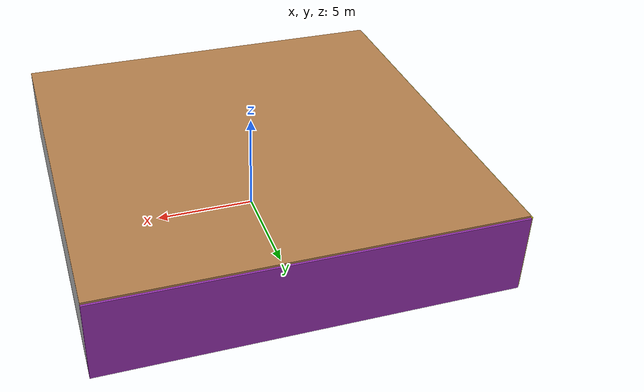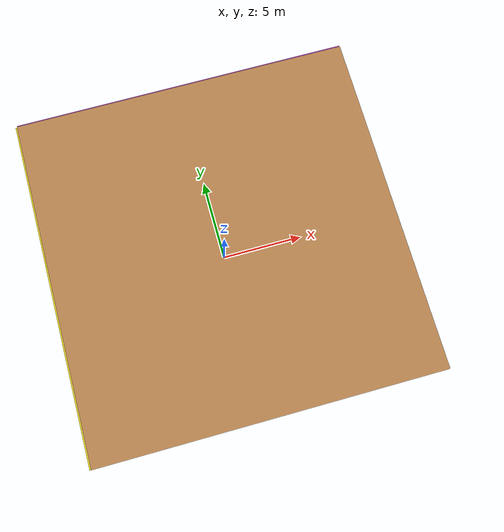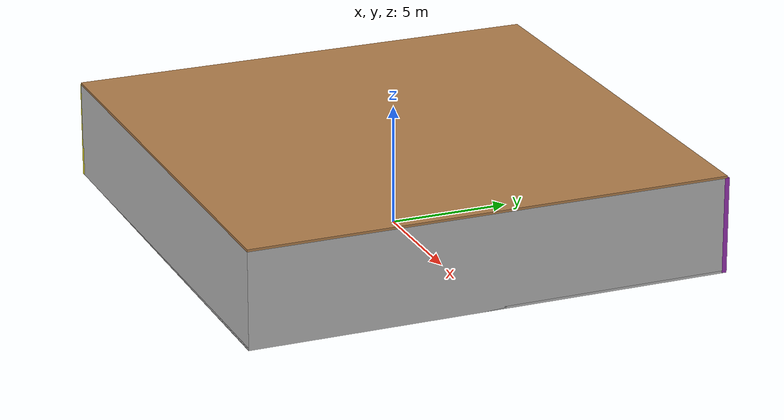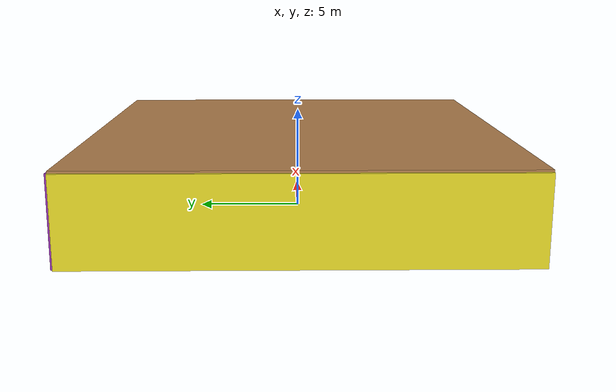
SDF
<sdf version="1.4">
 <world name="default">
  <physics type="ode">
   <max_step_size>0.001</max_step_size>
   <real_time_factor>1</real_time_factor>
   <real_time_update_rate>1000</real_time_update_rate>
   <gravity>0 0 -9.8</gravity>
  </physics>
  <scene><ambient>0.4 0.4 0.4 1</ambient><background>0.7 0.7 0.7 1</background><shadows>1</shadows></scene>
  <model name="Surrounding">
   <static>1</static>
   <link name="Ceiling">
    <collision name="Ceiling_Collision"><geometry><box><size>20 20 0.1</size></box></geometry></collision>
    <visual name="Ceiling_Visual">
     <geometry><box><size>20 20 0.1</size></box></geometry>
     <material>
      <script><uri>file://media/materials/scripts/gazebo.material</uri><name>Gazebo/Wood</name></script>
     </material>
    </visual>
    <pose>0 0 4.05 0 0 0</pose>
   </link>
   <link name="Wall_South">
    <collision name="Wall_South_Collision">
     <geometry><box><size>20 0 4</size></box></geometry>
     <pose>0 0 2 0 -0 0</pose>
    </collision>
    <visual name="Wall_South_Visual">
     <pose>0 0 2 0 -0 0</pose>
     <geometry><box><size>20 0 4</size></box></geometry>
     <material>
      <script><uri>file://media/materials/scripts/gazebo.material</uri><name>Gazebo/LightOn</name></script>
     </material>
    </visual>
    <velocity_decay><linear>0</linear><angular>0</angular></velocity_decay>
    <pose>0 -10 0 0 -0 0</pose>
   </link>
   <link name="Wall_East">
    <collision name="Wall_21_Collision">
     <geometry><box><size>20 0 4</size></box></geometry>
     <pose>0 0 2 0 -0 0</pose>
    </collision>
    <visual name="Wall_21_Visual">
     <pose>0 0 2 0 -0 0</pose>
     <geometry><box><size>20 0 4</size></box></geometry>
     <material>
      <script><uri>file://media/materials/scripts/gazebo.material</uri><name>Gazebo/LightOn</name></script>
     </material>
    </visual>
    <velocity_decay><linear>0</linear><angular>0</angular></velocity_decay>
    <pose>10 0 0 0 -0 1.5708</pose>
   </link>
   <link name="Wall_North">
    <collision name="Wall_22_Collision">
     <geometry><box><size>20 0.2 4</size></box></geometry>
     <pose>0 0 2 0 -0 0</pose>
    </collision>
    <visual name="Wall_22_Visual">
     <pose>0 0 2 0 -0 0</pose>
     <geometry><box><size>20 0.2 4</size></box></geometry>
     <material>
      <script><uri>file://media/materials/scripts/gazebo.material</uri><name>Gazebo/Purple</name></script>
     </material>
    </visual>
    <velocity_decay><linear>0</linear><angular>0</angular></velocity_decay>
    <pose>0 10 0 0 -0 0</pose>
   </link>
   <link name="Wall_West">
    <collision name="Wall_23_Collision">
     <geometry><box><size>20 0.2 4</size></box></geometry>
     <pose>0 0 2 0 -0 0</pose>
    </collision>
    <visual name="Wall_23_Visual">
     <pose>0 0 2 0 -0 0</pose>
     <geometry><box><size>20 0.2 4</size></box></geometry>
     <material>
      <script><uri>file://media/materials/scripts/gazebo.material</uri><name>Gazebo/YellowGlow</name></script>
     </material>
    </visual>
    <velocity_decay><linear>0</linear><angular>0</angular></velocity_decay>
    <pose>-10 0 0 0 0 -1.5708</pose>
   </link>
   <link name="Ground_link">
    <collision name="collision">
     <pose>0 0 .05 0 -0 0</pose>
     <geometry><box><size>20 20 0.1</size></box></geometry>
    </collision>
    <visual name="visual">
     <pose>0 0 .05 0 -0 0</pose>
     <geometry><box><size>20 20 0.1</size></box></geometry>
     <material>
      <script><uri>file://media/materials/scripts/gazebo.material</uri><name>Gazebo/LightOn</name></script>
     </material>
    </visual>
   </link>
   <static>1</static>
  </model>
  <spherical_coordinates>
   <surface_model>EARTH_WGS84</surface_model>
   <latitude_deg>0</latitude_deg>
   <longitude_deg>0</longitude_deg>
   <elevation>0</elevation>
   <heading_deg>0</heading_deg>
  </spherical_coordinates>
  <light name="lightball_0" type="diffuse">
   <diffuse>0.8 0.8 0.8 1</diffuse>
   <specular>0.2 0.2 0.2 1</specular>
   <attenuation>
    <range>100</range>
    <constant>0.7</constant>
    <linear>0.01</linear>
    <quadratic>0.001</quadratic>
   </attenuation>
   <direction>-0.5 0.1 -0.9</direction>
   <pose>-8.33994092948 8.17663829289 2.87428314842 0 0 0</pose>
  </light>
  <light name="lightball_1" type="diffuse">
   <diffuse>0.8 0.8 0.8 1</diffuse>
   <specular>0.2 0.2 0.2 1</specular>
   <attenuation>
    <range>100</range>
    <constant>0.7</constant>
    <linear>0.01</linear>
    <quadratic>0.001</quadratic>
   </attenuation>
   <direction>-0.5 0.1 -0.9</direction>
   <pose>2.44733243009 -5.24259052689 3.00695471602 0 0 0</pose>
  </light>
  <light name="lightball_2" type="diffuse">
   <diffuse>0.8 0.8 0.8 1</diffuse>
   <specular>0.2 0.2 0.2 1</specular>
   <attenuation>
    <range>100</range>
    <constant>0.7</constant>
    <linear>0.01</linear>
    <quadratic>0.001</quadratic>
   </attenuation>
   <direction>-0.5 0.1 -0.9</direction>
   <pose>-2.70805843356 -3.47524966386 1.7025420923 0 0 0</pose>
  </light>
  <light name="lightball_3" type="diffuse">
   <diffuse>0.8 0.8 0.8 1</diffuse>
   <specular>0.2 0.2 0.2 1</specular>
   <attenuation>
    <range>100</range>
    <constant>0.7</constant>
    <linear>0.01</linear>
    <quadratic>0.001</quadratic>
   </attenuation>
   <direction>-0.5 0.1 -0.9</direction>
   <pose>-8.80910038697 4.37445166102 1.63751937374 0 0 0</pose>
  </light>
  <light name="lightball_4" type="diffuse">
   <diffuse>0.8 0.8 0.8 1</diffuse>
   <specular>0.2 0.2 0.2 1</specular>
   <attenuation>
    <range>100</range>
    <constant>0.7</constant>
    <linear>0.01</linear>
    <quadratic>0.001</quadratic>
   </attenuation>
   <direction>-0.5 0.1 -0.9</direction>
   <pose>-5.66909847979 -8.48097791285 2.81331134108 0 0 0</pose>
  </light>
  <light name="lightball_5" type="diffuse">
   <diffuse>0.8 0.8 0.8 1</diffuse>
   <specular>0.2 0.2 0.2 1</specular>
   <attenuation>
    <range>100</range>
    <constant>0.7</constant>
    <linear>0.01</linear>
    <quadratic>0.001</quadratic>
   </attenuation>
   <direction>-0.5 0.1 -0.9</direction>
   <pose>7.96696008227 7.1665662584 2.66124310157 0 0 0</pose>
  </light>
  <light name="lightball_6" type="diffuse">
   <diffuse>0.8 0.8 0.8 1</diffuse>
   <specular>0.2 0.2 0.2 1</specular>
   <attenuation>
    <range>100</range>
    <constant>0.7</constant>
    <linear>0.01</linear>
    <quadratic>0.001</quadratic>
   </attenuation>
   <direction>-0.5 0.1 -0.9</direction>
   <pose>1.51558045861 9.13356076716 2.82070595998 0 0 0</pose>
  </light>
  <include><uri>model://table</uri><pose>-6.90549102928 -4.63879682951 0 0 0 2.77918905873</pose></include>
 </world>
</sdf>

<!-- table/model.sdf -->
<sdf version="1.5">
  <model name="table">
    <static>true</static>
    <link name="link">
      <collision name="surface">
        <pose>0 0 1.0 0 0 0</pose>
        <geometry>
          <box>
            <size>1.5 0.8 0.03</size>
          </box>
        </geometry>
        <surface>
          <friction>
            <ode>
              <mu>0.6</mu>
              <mu2>0.6</mu2>
            </ode>
          </friction>
        </surface>
      </collision>
      <visual name="visual1">
        <pose>0 0 1.0 0 0 0</pose>
        <geometry>
          <box>
            <size>1.5 0.8 0.03</size>
          </box>
        </geometry>
        <material>
          <script>
            <uri>model://media/materials/scripts/gazebo.material</uri>
            <name>Gazebo/Wood</name>
          </script>
        </material>
      </visual>
      <collision name="front_left_leg">
        <pose>0.68 0.38 0.5 0 0 0</pose>
        <geometry>
          <cylinder>
            <radius>0.02</radius>
            <length>1.0</length>
          </cylinder>
        </geometry>
      </collision>
      <visual name="front_left_leg">
        <pose>0.68 0.38 0.5 0 0 0</pose>
        <geometry>
          <cylinder>
            <radius>0.02</radius>
            <length>1.0</length>
          </cylinder>
        </geometry>
        <material>
          <script>
            <uri>model://media/materials/scripts/gazebo.material</uri>
            <name>Gazebo/Grey</name>
          </script>
        </material>
      </visual>
      <collision name="front_right_leg">
        <pose>0.68 -0.38 0.5 0 0 0</pose>
        <geometry>
          <cylinder>
            <radius>0.02</radius>
            <length>1.0</length>
          </cylinder>
        </geometry>
      </collision>
      <visual name="front_right_leg">
        <pose>0.68 -0.38 0.5 0 0 0</pose>
        <geometry>
          <cylinder>
            <radius>0.02</radius>
            <length>1.0</length>
          </cylinder>
        </geometry>
        <material>
          <script>
            <uri>model://media/materials/scripts/gazebo.material</uri>
            <name>Gazebo/Grey</name>
          </script>
        </material>
      </visual>
      <collision name="back_right_leg">
        <pose>-0.68 -0.38 0.5 0 0 0</pose>
        <geometry>
          <cylinder>
            <radius>0.02</radius>
            <length>1.0</length>
          </cylinder>
        </geometry>
      </collision>
      <visual name="back_right_leg">
        <pose>-0.68 -0.38 0.5 0 0 0</pose>
        <geometry>
          <cylinder>
            <radius>0.02</radius>
            <length>1.0</length>
          </cylinder>
        </geometry>
        <material>
          <script>
            <uri>model://media/materials/scripts/gazebo.material</uri>
            <name>Gazebo/Grey</name>
          </script>
        </material>
      </visual>
      <collision name="back_left_leg">
        <pose>-0.68 0.38 0.5 0 0 0</pose>
        <geometry>
          <cylinder>
            <radius>0.02</radius>
            <length>1.0</length>
          </cylinder>
        </geometry>
      </collision>
      <visual name="back_left_leg">
        <pose>-0.68 0.38 0.5 0 0 0</pose>
        <geometry>
          <cylinder>
            <radius>0.02</radius>
            <length>1.0</length>
          </cylinder>
        </geometry>
        <material>
          <script>
            <uri>model://media/materials/scripts/gazebo.material</uri>
            <name>Gazebo/Grey</name>
          </script>
        </material>
      </visual>
    </link>
  </model>
</sdf>
